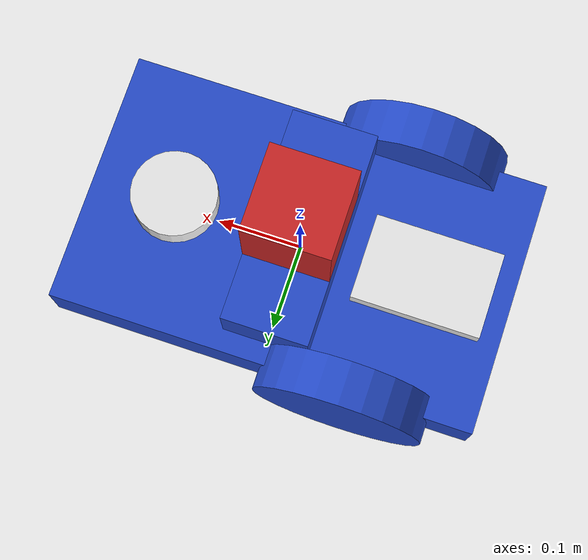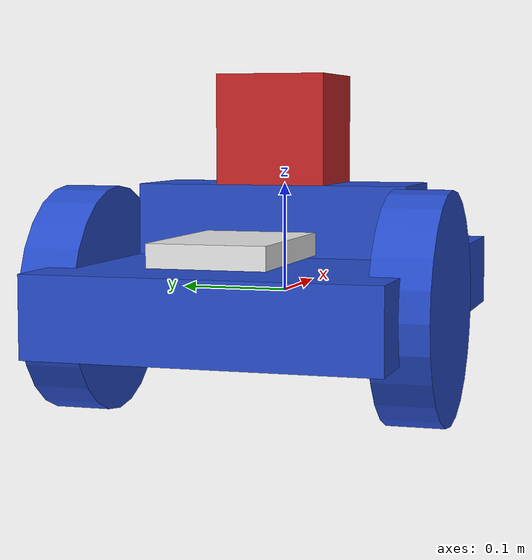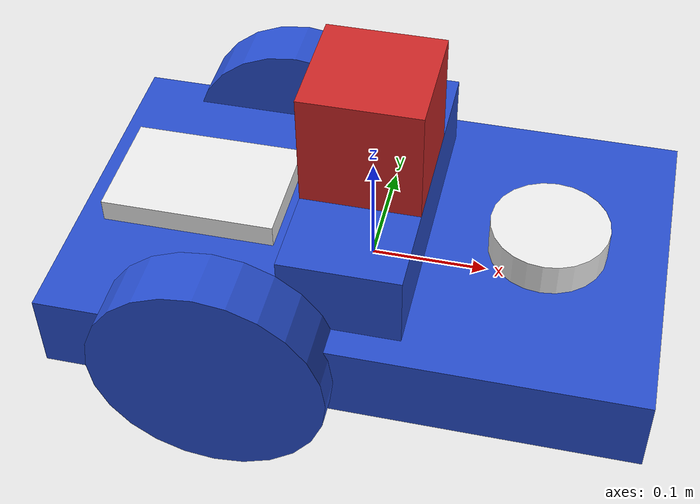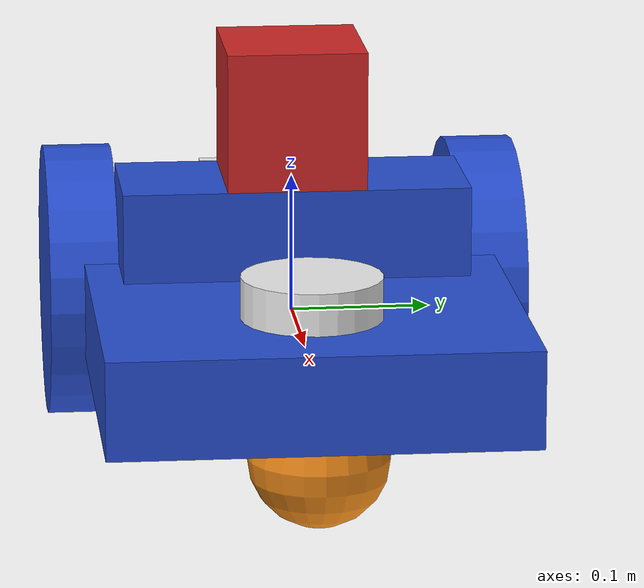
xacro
<?xml version="1.0" ?>
<robot name="i214" xmlns:xacro="http://www.ros.org/wiki/xacro">
  <xacro:include filename="$(find i214_description)/urdf/materials.xacro" />
  <xacro:include filename="$(find i214_description)/urdf/i214.gazebo" />
  <xacro:include filename="$(find i214_description)/urdf/macros.xacro" />

  <link name="link_chassis">
    <!-- pose and inertial -->
    <pose>0 0 0.1 0 0 0</pose>
    <inertial>
      <mass value="5"/>
      <origin rpy="0 0 0" xyz="0 0 0.1"/>
      <inertia ixx="0.0395416666667" ixy="0" ixz="0" iyy="0.106208333333" iyz="0" izz="0.106208333333"/>
    </inertial>
    <!-- body -->
    <collision name="collision_chassis">
      <geometry>
        <box size="0.5 0.3 0.07"/>
      </geometry>
    </collision>
    <visual>
      <origin rpy="0 0 0" xyz="0 0 0"/>
      <geometry>
        <box size="0.5 0.3 0.07"/>
      </geometry>
      <material name="blue"/>
    </visual>
    <!-- camera mount -->
    <collision name="collision_camera_mount">
      <geometry>
        <box size="0.1 0.25 0.1"/>
      </geometry>
    </collision>
    <visual>
      <origin rpy="0 0 0" xyz="0 0 0.05"/>
      <geometry>
        <box size="0.1 0.25 0.1"/>
      </geometry>
      <material name="blue"/>
    </visual>
    <!-- caster front -->
    <collision name="caster_front_collision">
      <origin rpy=" 0 0 0" xyz="0.35 0 -0.05"/>
      <geometry>
        <sphere radius="0.05"/>
      </geometry>
      <surface>
        <friction>
          <ode>
            <mu>0</mu>
            <mu2>0</mu2>
            <slip1>1.0</slip1>
            <slip2>1.0</slip2>
          </ode>
        </friction>
      </surface>
    </collision>
    <visual name="caster_front_visual">
      <origin rpy=" 0 0 0" xyz="0.2 0 -0.05"/>
      <geometry>
        <sphere radius="0.05"/>
      </geometry>
    </visual>
  </link>

  <joint name="camera_joint" type="continuous">
    <axis xyz="0 0 1" />
    <origin xyz="0 0 0.15" rpy="0 0 0"/>
    <parent link="link_chassis"/>
    <child link="camera_link"/>
    <limit effort="100" velocity="100"/>
  </joint>

  <!-- Camera -->
  <link name="camera_link">
    <collision>
      <origin xyz="0 0 0" rpy="0 0 0"/>
      <geometry>
        <box size="0.1 0.1 0.1"/>
      </geometry>
    </collision>

    <visual>
      <origin xyz="0 0 0" rpy="0 0 0"/>
      <geometry>
        <box size="0.1 0.1 0.1"/>
      </geometry>
      <material name="red"/>
    </visual>

    <inertial>
      <mass value="1e-5" />
      <origin xyz="0 0 0" rpy="0 0 0"/>
      <inertia ixx="1e-6" ixy="0" ixz="0" iyy="1e-6" iyz="0" izz="1e-6" />
    </inertial>
  </link>

  <link name="sensor_laser">
  <inertial>
      <origin xyz="0 0 0" rpy="0 0 0" />
      <mass value="0.1" />
      <xacro:cylinder_inertia m="0.1" r="0.05" h="0.1" />
  </inertial>

  <visual>
      <origin xyz="0 0 0" rpy="0 0 0" />
      <geometry>
      <cylinder radius="0.05" length="0.03"/>
      </geometry>
      <material name="white" />
  </visual>

  <collision>
      <origin xyz="0 0 0" rpy="0 0 0"/>
      <geometry>
      <cylinder radius="0.05" length="0.1"/>
      </geometry>
  </collision>
  </link>

  <joint name="joint_sensor_laser" type="fixed">
      <origin xyz="0.15 0 0.05" rpy="0 0 0"/>
      <parent link="link_chassis"/>
      <child link="sensor_laser"/>
  </joint>

  <joint name="imu_joint" type="fixed">
   <axis xyz="1 0 0"/>
   <origin xyz="-0.15 0 0.05"/>
   <parent link="link_chassis"/>
   <child link="imu_link"/>
 </joint>

 <link name="imu_link">
  <inertial>
    <mass value="0.001"/>
    <origin rpy="0 0 0" xyz="0 0 0"/>
    <inertia ixx="0.0001" ixy="0" ixz="0" iyy="0.000001" iyz="0" izz="0.0001"/>
  </inertial>
  <visual>
    <origin rpy="0 0 0" xyz="0 0 0"/>
    <geometry>
      <box size="0.15 0.1 0.02"/>
    </geometry>
    <material name="white" />
  </visual>
  <collision>
    <origin rpy="0 0 0" xyz="0 0 0"/>
    <geometry>
      <box size=".15 .1 .02"/>
    </geometry>
  </collision>
 </link>

 <link name="left_wheel">
   <!--origin xyz="0.1 0.13 0.1" rpy="0 1.5707 1.5707"/-->
   <collision name="collision">
     <origin xyz="0 0 0" rpy="0 1.5707 1.5707"/>
     <geometry>
       <cylinder radius="0.1" length="0.05"/>
     </geometry>
   </collision>
   <visual name="left_wheel_visual">
     <origin xyz="0 0 0" rpy="0 1.5707 1.5707"/>
     <geometry>
       <cylinder radius="0.1" length="0.05"/>
     </geometry>
   </visual>
   <inertial>
     <origin xyz="0 0 0" rpy="0 1.5707 1.5707"/>
     <mass value="5"/>
     <cylinder_inertia m="5" r="0.1" h="0.05"/>
     <inertia
       ixx="1.0" ixy="0.0" ixz="0.0"
       iyy="1.0" iyz="0.0"
       izz="1.0"/>
   </inertial>
 </link>

 <link name="right_wheel">
   <!--origin xyz="0.1 -0.13 0.1" rpy="0 1.5707 1.5707"/-->
   <collision name="collision">
     <origin xyz="0 0 0" rpy="0 1.5707 1.5707"/>
     <geometry>
       <cylinder radius="0.1" length="0.05"/>
     </geometry>
   </collision>
   <visual name="right_wheel_visual">
     <origin xyz="0 0 0" rpy="0 1.5707 1.5707"/>
     <geometry>
       <cylinder radius="0.1" length="0.05"/>
     </geometry>
   </visual>
   <inertial>
     <origin xyz="0 0 0" rpy="0 1.5707 1.5707"/>
     <mass value="5"/>
     <cylinder_inertia m="5" r="0.1" h="0.05"/>
     <inertia
       ixx="1.0" ixy="0.0" ixz="0.0"
       iyy="1.0" iyz="0.0"
       izz="1.0"/>
   </inertial>
 </link>

 <joint type="continuous" name="left_wheel_hinge">
   <origin xyz="-0.1 0.15 0" rpy="0 0 0"/>
   <child link="left_wheel"/>
   <parent link="link_chassis"/>
   <axis xyz="0 1 0" rpy="0 0 0"/>
   <limit effort="100" velocity="100"/>
   <joint_properties damping="0.0" friction="0.0"/>
 </joint>

 <joint type="continuous" name="right_wheel_hinge">
   <origin xyz="-0.1 -0.15 0" rpy="0 0 0"/>
   <child link="right_wheel"/>
   <parent link="link_chassis"/>
   <axis xyz="0 1 0" rpy="0 0 0"/>
   <limit effort="100" velocity="100"/>
   <joint_properties damping="0.0" friction="0.0"/>
 </joint>

   <!-- transmission -->
    <transmission name="tran1">
    <type>transmission_interface/SimpleTransmission</type>
    <joint name="camera_joint">
      <hardwareInterface>hardware_interface/VelocityJointInterface</hardwareInterface>
    </joint>
    <actuator name="motor1">
      <hardwareInterface>hardware_interface/VelocityJointInterface</hardwareInterface>
      <mechanicalReduction>1</mechanicalReduction>
    </actuator>
  </transmission>

</robot>
